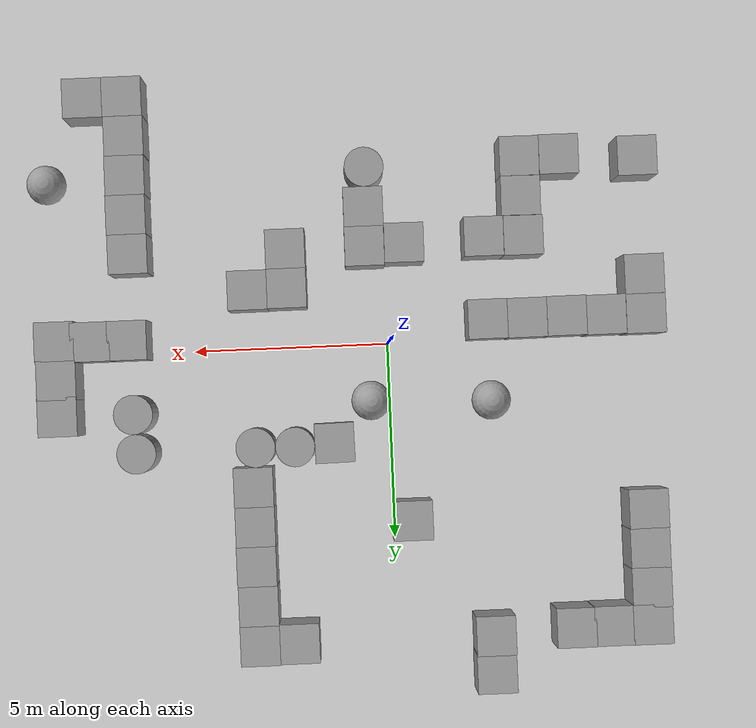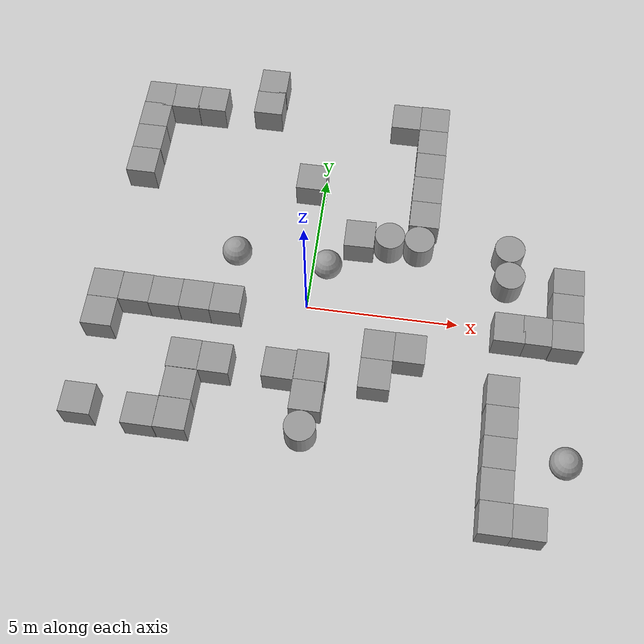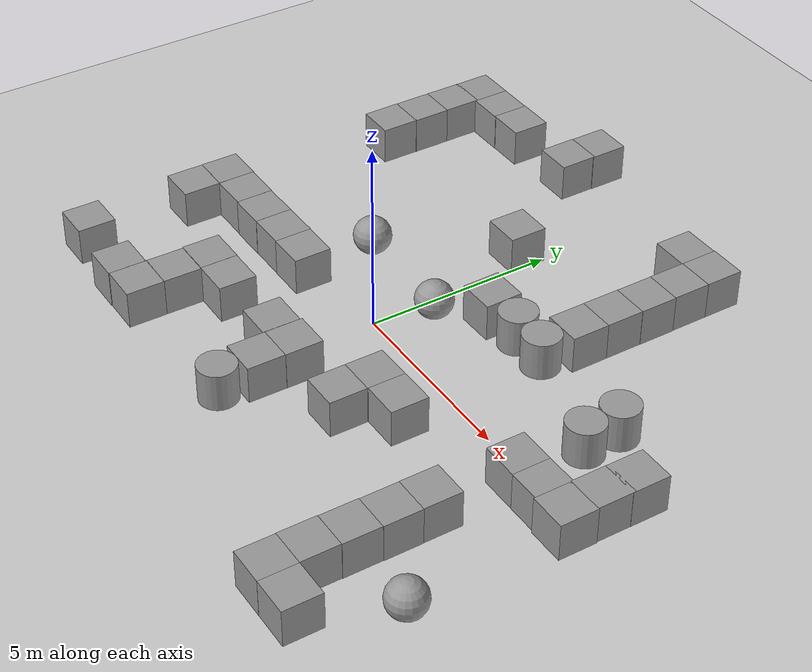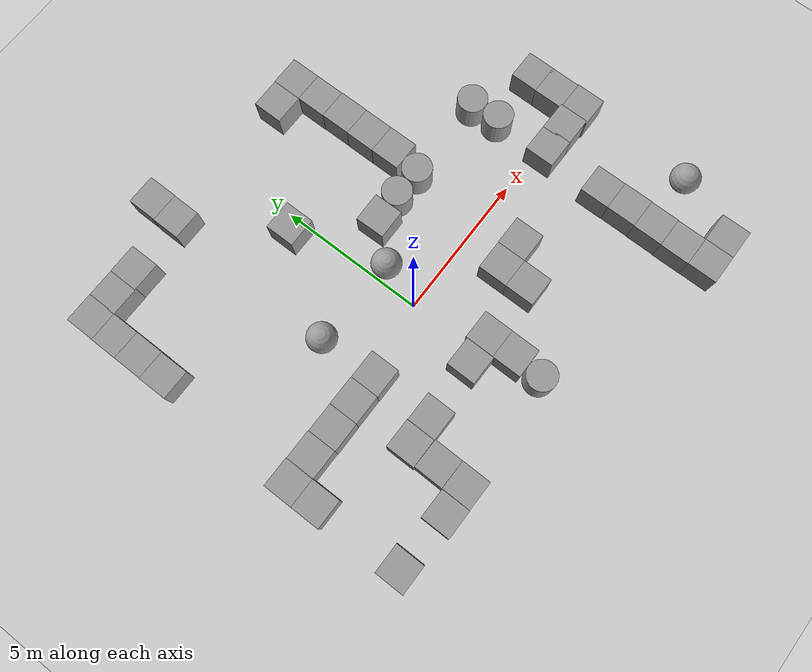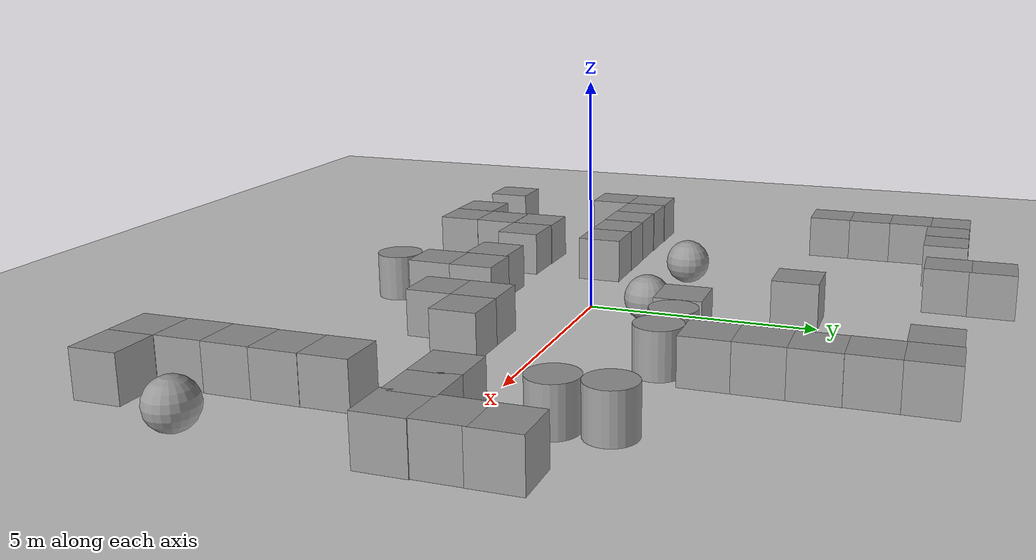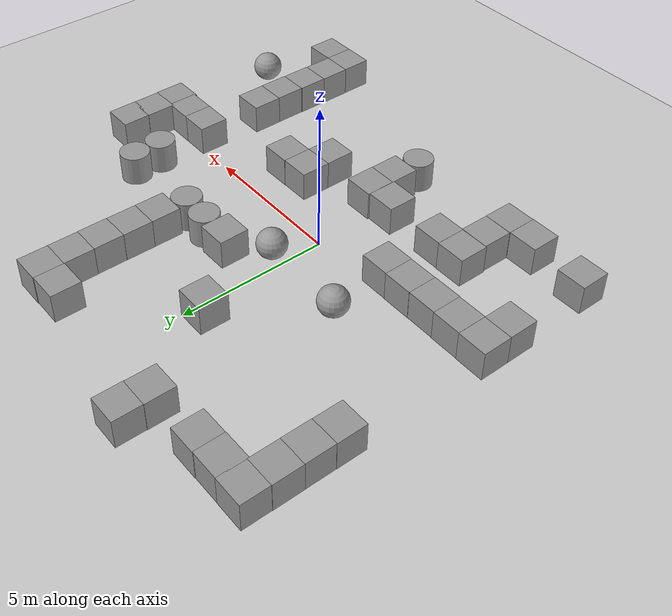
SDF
<sdf version="1.7">
 <world name="default">
  <light name="sun" type="directional">
   <pose>0 0 10 0 -0 0</pose>
   <diffuse>0.8 0.8 0.8 1</diffuse>
   <specular>0.2 0.2 0.2 1</specular>
   <attenuation>
    <range>1000</range>
    <constant>0.9</constant>
    <linear>0.01</linear>
    <quadratic>0.001</quadratic>
   </attenuation>
   <direction>-0.5 0.1 -0.9</direction>
   <spot><inner_angle>0</inner_angle><outer_angle>0</outer_angle><falloff>0</falloff></spot>
  </light>
  <model name="ground_plane">
   <static>1</static>
   <link name="link">
    <collision name="collision">
     <geometry><plane><normal>0 0 1</normal><size>100 100</size></plane></geometry>
     <surface><friction><ode><mu>100</mu><mu2>50</mu2></ode></friction></surface>
    </collision>
    <visual name="visual">
     <cast_shadows>0</cast_shadows>
     <geometry><plane><normal>0 0 1</normal><size>100 100</size></plane></geometry>
     <material>
      <script><uri>file://media/materials/scripts/gazebo.material</uri><name>Gazebo/Grey</name></script>
     </material>
    </visual>
   </link>
  </model>
  <gravity>0 0 -9.8</gravity>
  <magnetic_field>6e-06 2.3e-05 -4.2e-05</magnetic_field>
  <atmosphere type="adiabatic"/>
  <physics type="ode">
   <max_step_size>0.001</max_step_size>
   <real_time_factor>1</real_time_factor>
   <real_time_update_rate>1000</real_time_update_rate>
  </physics>
  <scene><ambient>0.4 0.4 0.4 1</ambient><background>0.7 0.7 0.7 1</background><shadows>1</shadows></scene>
  <audio><device>default</device></audio>
  <spherical_coordinates>
   <surface_model>EARTH_WGS84</surface_model>
   <latitude_deg>0</latitude_deg>
   <longitude_deg>0</longitude_deg>
   <elevation>0</elevation>
   <heading_deg>0</heading_deg>
  </spherical_coordinates>
  <model name="unit_box">
   <pose>-2.53778 -0.50539 0.499995 -1e-05 -0 0.002031</pose>
   <link name="link">
    <inertial>
     <mass>1</mass>
     <inertia>
      <ixx>0.166667</ixx>
      <ixy>0</ixy>
      <ixz>0</ixz>
      <iyy>0.166667</iyy>
      <iyz>0</iyz>
      <izz>0.166667</izz>
     </inertia>
    </inertial>
    <collision name="collision"><geometry><box><size>1 1 1</size></box></geometry></collision>
    <visual name="visual">
     <geometry><box><size>1 1 1</size></box></geometry>
     <material>
      <script><name>Gazebo/Grey</name><uri>file://media/materials/scripts/gazebo.material</uri></script>
     </material>
    </visual>
   </link>
  </model>
  <model name="unit_box_0">
   <pose>-0.447751 4.51274 0.499995 1e-05 -0 0</pose>
   <link name="link">
    <inertial>
     <mass>1</mass>
     <inertia>
      <ixx>0.166667</ixx>
      <ixy>0</ixy>
      <ixz>0</ixz>
      <iyy>0.166667</iyy>
      <iyz>0</iyz>
      <izz>0.166667</izz>
     </inertia>
    </inertial>
    <collision name="collision"><geometry><box><size>1 1 1</size></box></geometry></collision>
    <visual name="visual">
     <geometry><box><size>1 1 1</size></box></geometry>
     <material>
      <script><name>Gazebo/Grey</name><uri>file://media/materials/scripts/gazebo.material</uri></script>
     </material>
    </visual>
   </link>
  </model>
  <model name="unit_sphere">
   <pose>-2.59013 1.54719 0.5 0 -0 0</pose>
   <link name="link">
    <inertial>
     <mass>1</mass>
     <inertia><ixx>0.1</ixx><ixy>0</ixy><ixz>0</ixz><iyy>0.1</iyy><iyz>0</iyz><izz>0.1</izz></inertia>
    </inertial>
    <collision name="collision"><geometry><sphere><radius>0.5</radius></sphere></geometry></collision>
    <visual name="visual">
     <geometry><sphere><radius>0.5</radius></sphere></geometry>
     <material>
      <script><name>Gazebo/Grey</name><uri>file://media/materials/scripts/gazebo.material</uri></script>
     </material>
    </visual>
   </link>
  </model>
  <model name="unit_cylinder">
   <pose>2.45764 2.53387 0.499994 2e-06 -6e-06 -0.009375</pose>
   <link name="link">
    <inertial>
     <mass>1</mass>
     <inertia><ixx>0.145833</ixx><ixy>0</ixy><ixz>0</ixz><iyy>0.145833</iyy><iyz>0</iyz><izz>0.125</izz></inertia>
    </inertial>
    <collision name="collision">
     <geometry><cylinder><radius>0.5</radius><length>1</length></cylinder></geometry>
    </collision>
    <visual name="visual">
     <geometry><cylinder><radius>0.5</radius><length>1</length></cylinder></geometry>
     <material>
      <script><name>Gazebo/Grey</name><uri>file://media/materials/scripts/gazebo.material</uri></script>
     </material>
    </visual>
   </link>
  </model>
  <model name="unit_box_1">
   <pose>-3.53782 -0.499762 0.499995 0 1e-05 0.00204</pose>
   <link name="link">
    <inertial>
     <mass>1</mass>
     <inertia>
      <ixx>0.166667</ixx>
      <ixy>0</ixy>
      <ixz>0</ixz>
      <iyy>0.166667</iyy>
      <iyz>0</iyz>
      <izz>0.166667</izz>
     </inertia>
    </inertial>
    <collision name="collision"><geometry><box><size>1 1 1</size></box></geometry></collision>
    <visual name="visual">
     <geometry><box><size>1 1 1</size></box></geometry>
     <material>
      <script><name>Gazebo/Grey</name><uri>file://media/materials/scripts/gazebo.material</uri></script>
     </material>
    </visual>
   </link>
  </model>
  <model name="unit_cylinder_0">
   <pose>3.45746 2.51334 0.499995 -6e-06 1e-06 -0.000946</pose>
   <link name="link">
    <inertial>
     <mass>1</mass>
     <inertia><ixx>0.145833</ixx><ixy>0</ixy><ixz>0</ixz><iyy>0.145833</iyy><iyz>0</iyz><izz>0.125</izz></inertia>
    </inertial>
    <collision name="collision">
     <geometry><cylinder><radius>0.5</radius><length>1</length></cylinder></geometry>
    </collision>
    <visual name="visual">
     <geometry><cylinder><radius>0.5</radius><length>1</length></cylinder></geometry>
     <material>
      <script><name>Gazebo/Grey</name><uri>file://media/materials/scripts/gazebo.material</uri></script>
     </material>
    </visual>
   </link>
  </model>
  <model name="unit_cylinder_1">
   <pose>6.46575 2.55308 0.499994 -3e-06 -1e-06 0.002267</pose>
   <link name="link">
    <inertial>
     <mass>1</mass>
     <inertia><ixx>0.145833</ixx><ixy>0</ixy><ixz>0</ixz><iyy>0.145833</iyy><iyz>0</iyz><izz>0.125</izz></inertia>
    </inertial>
    <collision name="collision">
     <geometry><cylinder><radius>0.5</radius><length>1</length></cylinder></geometry>
    </collision>
    <visual name="visual">
     <geometry><cylinder><radius>0.5</radius><length>1</length></cylinder></geometry>
     <material>
      <script><name>Gazebo/Grey</name><uri>file://media/materials/scripts/gazebo.material</uri></script>
     </material>
    </visual>
   </link>
  </model>
  <model name="unit_box_2">
   <pose>-4.53817 -0.507899 0.499995 -1e-05 0 0.002766</pose>
   <link name="link">
    <inertial>
     <mass>1</mass>
     <inertia>
      <ixx>0.166667</ixx>
      <ixy>0</ixy>
      <ixz>0</ixz>
      <iyy>0.166667</iyy>
      <iyz>0</iyz>
      <izz>0.166667</izz>
     </inertia>
    </inertial>
    <collision name="collision"><geometry><box><size>1 1 1</size></box></geometry></collision>
    <visual name="visual">
     <geometry><box><size>1 1 1</size></box></geometry>
     <material>
      <script><name>Gazebo/Grey</name><uri>file://media/materials/scripts/gazebo.material</uri></script>
     </material>
    </visual>
   </link>
  </model>
  <model name="unit_box_3">
   <pose>-5.53828 -0.496096 0.499995 1e-05 -0 0.002902</pose>
   <link name="link">
    <inertial>
     <mass>1</mass>
     <inertia>
      <ixx>0.166667</ixx>
      <ixy>0</ixy>
      <ixz>0</ixz>
      <iyy>0.166667</iyy>
      <iyz>0</iyz>
      <izz>0.166667</izz>
     </inertia>
    </inertial>
    <collision name="collision"><geometry><box><size>1 1 1</size></box></geometry></collision>
    <visual name="visual">
     <geometry><box><size>1 1 1</size></box></geometry>
     <material>
      <script><name>Gazebo/Grey</name><uri>file://media/materials/scripts/gazebo.material</uri></script>
     </material>
    </visual>
   </link>
  </model>
  <model name="unit_box_4">
   <pose>-6.53595 -1.4848 0.499995 1e-05 -0 0.00194</pose>
   <link name="link">
    <inertial>
     <mass>1</mass>
     <inertia>
      <ixx>0.166667</ixx>
      <ixy>0</ixy>
      <ixz>0</ixz>
      <iyy>0.166667</iyy>
      <iyz>0</iyz>
      <izz>0.166667</izz>
     </inertia>
    </inertial>
    <collision name="collision"><geometry><box><size>1 1 1</size></box></geometry></collision>
    <visual name="visual">
     <geometry><box><size>1 1 1</size></box></geometry>
     <material>
      <script><name>Gazebo/Grey</name><uri>file://media/materials/scripts/gazebo.material</uri></script>
     </material>
    </visual>
   </link>
  </model>
  <model name="unit_box_5">
   <pose>-6.54033 -0.483931 0.499995 -0 -1e-05 0.000425</pose>
   <link name="link">
    <inertial>
     <mass>1</mass>
     <inertia>
      <ixx>0.166667</ixx>
      <ixy>0</ixy>
      <ixz>0</ixz>
      <iyy>0.166667</iyy>
      <iyz>0</iyz>
      <izz>0.166667</izz>
     </inertia>
    </inertial>
    <collision name="collision"><geometry><box><size>1 1 1</size></box></geometry></collision>
    <visual name="visual">
     <geometry><box><size>1 1 1</size></box></geometry>
     <material>
      <script><name>Gazebo/Grey</name><uri>file://media/materials/scripts/gazebo.material</uri></script>
     </material>
    </visual>
   </link>
  </model>
  <model name="unit_cylinder_2">
   <pose>6.5122 1.55393 0.499991 -1e-06 -1e-06 0.001186</pose>
   <link name="link">
    <inertial>
     <mass>1</mass>
     <inertia><ixx>0.145833</ixx><ixy>0</ixy><ixz>0</ixz><iyy>0.145833</iyy><iyz>0</iyz><izz>0.125</izz></inertia>
    </inertial>
    <collision name="collision">
     <geometry><cylinder><radius>0.5</radius><length>1</length></cylinder></geometry>
    </collision>
    <visual name="visual">
     <geometry><cylinder><radius>0.5</radius><length>1</length></cylinder></geometry>
     <material>
      <script><name>Gazebo/Grey</name><uri>file://media/materials/scripts/gazebo.material</uri></script>
     </material>
    </visual>
   </link>
  </model>
  <model name="unit_box_6">
   <pose>-3.52235 -2.58657 0.499995 0 -1e-05 -0.001505</pose>
   <link name="link">
    <inertial>
     <mass>1</mass>
     <inertia>
      <ixx>0.166667</ixx>
      <ixy>0</ixy>
      <ixz>0</ixz>
      <iyy>0.166667</iyy>
      <iyz>0</iyz>
      <izz>0.166667</izz>
     </inertia>
    </inertial>
    <collision name="collision"><geometry><box><size>1 1 1</size></box></geometry></collision>
    <visual name="visual">
     <geometry><box><size>1 1 1</size></box></geometry>
     <material>
      <script><name>Gazebo/Grey</name><uri>file://media/materials/scripts/gazebo.material</uri></script>
     </material>
    </visual>
   </link>
  </model>
  <model name="unit_box_7">
   <pose>-3.49268 -3.59352 0.499995 1e-05 -0 -0.011476</pose>
   <link name="link">
    <inertial>
     <mass>1</mass>
     <inertia>
      <ixx>0.166667</ixx>
      <ixy>0</ixy>
      <ixz>0</ixz>
      <iyy>0.166667</iyy>
      <iyz>0</iyz>
      <izz>0.166667</izz>
     </inertia>
    </inertial>
    <collision name="collision"><geometry><box><size>1 1 1</size></box></geometry></collision>
    <visual name="visual">
     <geometry><box><size>1 1 1</size></box></geometry>
     <material>
      <script><name>Gazebo/Grey</name><uri>file://media/materials/scripts/gazebo.material</uri></script>
     </material>
    </visual>
   </link>
  </model>
  <model name="unit_box_8">
   <pose>-3.49602 -4.59581 0.499995 0 -1e-05 -0.00697</pose>
   <link name="link">
    <inertial>
     <mass>1</mass>
     <inertia>
      <ixx>0.166667</ixx>
      <ixy>0</ixy>
      <ixz>0</ixz>
      <iyy>0.166667</iyy>
      <iyz>0</iyz>
      <izz>0.166667</izz>
     </inertia>
    </inertial>
    <collision name="collision"><geometry><box><size>1 1 1</size></box></geometry></collision>
    <visual name="visual">
     <geometry><box><size>1 1 1</size></box></geometry>
     <material>
      <script><name>Gazebo/Grey</name><uri>file://media/materials/scripts/gazebo.material</uri></script>
     </material>
    </visual>
   </link>
  </model>
  <model name="unit_box_9">
   <pose>-4.49777 -4.60397 0.499995 -0 1e-05 -0.003597</pose>
   <link name="link">
    <inertial>
     <mass>1</mass>
     <inertia>
      <ixx>0.166667</ixx>
      <ixy>0</ixy>
      <ixz>0</ixz>
      <iyy>0.166667</iyy>
      <iyz>0</iyz>
      <izz>0.166667</izz>
     </inertia>
    </inertial>
    <collision name="collision"><geometry><box><size>1 1 1</size></box></geometry></collision>
    <visual name="visual">
     <geometry><box><size>1 1 1</size></box></geometry>
     <material>
      <script><name>Gazebo/Grey</name><uri>file://media/materials/scripts/gazebo.material</uri></script>
     </material>
    </visual>
   </link>
  </model>
  <model name="unit_box_10">
   <pose>-6.48021 -4.48785 0.499995 0 1e-05 0</pose>
   <link name="link">
    <inertial>
     <mass>1</mass>
     <inertia>
      <ixx>0.166667</ixx>
      <ixy>0</ixy>
      <ixz>0</ixz>
      <iyy>0.166667</iyy>
      <iyz>0</iyz>
      <izz>0.166667</izz>
     </inertia>
    </inertial>
    <collision name="collision"><geometry><box><size>1 1 1</size></box></geometry></collision>
    <visual name="visual">
     <geometry><box><size>1 1 1</size></box></geometry>
     <material>
      <script><name>Gazebo/Grey</name><uri>file://media/materials/scripts/gazebo.material</uri></script>
     </material>
    </visual>
   </link>
  </model>
  <model name="unit_box_11">
   <pose>-2.52094 -2.60102 0.499995 0 1e-05 -0.004421</pose>
   <link name="link">
    <inertial>
     <mass>1</mass>
     <inertia>
      <ixx>0.166667</ixx>
      <ixy>0</ixy>
      <ixz>0</ixz>
      <iyy>0.166667</iyy>
      <iyz>0</iyz>
      <izz>0.166667</izz>
     </inertia>
    </inertial>
    <collision name="collision"><geometry><box><size>1 1 1</size></box></geometry></collision>
    <visual name="visual">
     <geometry><box><size>1 1 1</size></box></geometry>
     <material>
      <script><name>Gazebo/Grey</name><uri>file://media/materials/scripts/gazebo.material</uri></script>
     </material>
    </visual>
   </link>
  </model>
  <model name="unit_box_12">
   <pose>-0.496494 -2.52437 0.499995 -1e-05 -0 -0.007908</pose>
   <link name="link">
    <inertial>
     <mass>1</mass>
     <inertia>
      <ixx>0.166667</ixx>
      <ixy>0</ixy>
      <ixz>0</ixz>
      <iyy>0.166667</iyy>
      <iyz>0</iyz>
      <izz>0.166667</izz>
     </inertia>
    </inertial>
    <collision name="collision"><geometry><box><size>1 1 1</size></box></geometry></collision>
    <visual name="visual">
     <geometry><box><size>1 1 1</size></box></geometry>
     <material>
      <script><name>Gazebo/Grey</name><uri>file://media/materials/scripts/gazebo.material</uri></script>
     </material>
    </visual>
   </link>
  </model>
  <model name="unit_box_13">
   <pose>0.507306 -2.47689 0.499995 0 1e-05 -0.002796</pose>
   <link name="link">
    <inertial>
     <mass>1</mass>
     <inertia>
      <ixx>0.166667</ixx>
      <ixy>0</ixy>
      <ixz>0</ixz>
      <iyy>0.166667</iyy>
      <iyz>0</iyz>
      <izz>0.166667</izz>
     </inertia>
    </inertial>
    <collision name="collision"><geometry><box><size>1 1 1</size></box></geometry></collision>
    <visual name="visual">
     <geometry><box><size>1 1 1</size></box></geometry>
     <material>
      <script><name>Gazebo/Grey</name><uri>file://media/materials/scripts/gazebo.material</uri></script>
     </material>
    </visual>
   </link>
  </model>
  <model name="unit_box_14">
   <pose>0.499847 -3.47689 0.5 -0 -0 -0.002798</pose>
   <link name="link">
    <inertial>
     <mass>1</mass>
     <inertia>
      <ixx>0.166667</ixx>
      <ixy>0</ixy>
      <ixz>0</ixz>
      <iyy>0.166667</iyy>
      <iyz>0</iyz>
      <izz>0.166667</izz>
     </inertia>
    </inertial>
    <collision name="collision"><geometry><box><size>1 1 1</size></box></geometry></collision>
    <visual name="visual">
     <geometry><box><size>1 1 1</size></box></geometry>
     <material>
      <script><name>Gazebo/Grey</name><uri>file://media/materials/scripts/gazebo.material</uri></script>
     </material>
    </visual>
   </link>
  </model>
  <model name="unit_box_15">
   <pose>2.52033 -2.48798 0.499995 -1e-05 -0 -1.8e-05</pose>
   <link name="link">
    <inertial>
     <mass>1</mass>
     <inertia>
      <ixx>0.166667</ixx>
      <ixy>0</ixy>
      <ixz>0</ixz>
      <iyy>0.166667</iyy>
      <iyz>0</iyz>
      <izz>0.166667</izz>
     </inertia>
    </inertial>
    <collision name="collision"><geometry><box><size>1 1 1</size></box></geometry></collision>
    <visual name="visual">
     <geometry><box><size>1 1 1</size></box></geometry>
     <material>
      <script><name>Gazebo/Grey</name><uri>file://media/materials/scripts/gazebo.material</uri></script>
     </material>
    </visual>
   </link>
  </model>
  <model name="unit_box_16">
   <pose>2.51875 -1.48796 0.499995 -1e-05 -0 1.4e-05</pose>
   <link name="link">
    <inertial>
     <mass>1</mass>
     <inertia>
      <ixx>0.166667</ixx>
      <ixy>0</ixy>
      <ixz>0</ixz>
      <iyy>0.166667</iyy>
      <iyz>0</iyz>
      <izz>0.166667</izz>
     </inertia>
    </inertial>
    <collision name="collision"><geometry><box><size>1 1 1</size></box></geometry></collision>
    <visual name="visual">
     <geometry><box><size>1 1 1</size></box></geometry>
     <material>
      <script><name>Gazebo/Grey</name><uri>file://media/materials/scripts/gazebo.material</uri></script>
     </material>
    </visual>
   </link>
  </model>
  <model name="unit_box_17">
   <pose>3.51876 -1.47839 0.499995 -0 -1e-05 1.8e-05</pose>
   <link name="link">
    <inertial>
     <mass>1</mass>
     <inertia>
      <ixx>0.166667</ixx>
      <ixy>0</ixy>
      <ixz>0</ixz>
      <iyy>0.166667</iyy>
      <iyz>0</iyz>
      <izz>0.166667</izz>
     </inertia>
    </inertial>
    <collision name="collision"><geometry><box><size>1 1 1</size></box></geometry></collision>
    <visual name="visual">
     <geometry><box><size>1 1 1</size></box></geometry>
     <material>
      <script><name>Gazebo/Grey</name><uri>file://media/materials/scripts/gazebo.material</uri></script>
     </material>
    </visual>
   </link>
  </model>
  <model name="unit_box_18">
   <pose>1.45854 2.46929 0.499995 -1e-05 -0 0.015995</pose>
   <link name="link">
    <inertial>
     <mass>1</mass>
     <inertia>
      <ixx>0.166667</ixx>
      <ixy>0</ixy>
      <ixz>0</ixz>
      <iyy>0.166667</iyy>
      <iyz>0</iyz>
      <izz>0.166667</izz>
     </inertia>
    </inertial>
    <collision name="collision"><geometry><box><size>1 1 1</size></box></geometry></collision>
    <visual name="visual">
     <geometry><box><size>1 1 1</size></box></geometry>
     <material>
      <script><name>Gazebo/Grey</name><uri>file://media/materials/scripts/gazebo.material</uri></script>
     </material>
    </visual>
   </link>
  </model>
  <model name="unit_sphere_0">
   <pose>0.483842 1.43719 0.5 0 -0 0</pose>
   <link name="link">
    <inertial>
     <mass>1</mass>
     <inertia><ixx>0.1</ixx><ixy>0</ixy><ixz>0</ixz><iyy>0.1</iyy><iyz>0</iyz><izz>0.1</izz></inertia>
    </inertial>
    <collision name="collision"><geometry><sphere><radius>0.5</radius></sphere></geometry></collision>
    <visual name="visual">
     <geometry><sphere><radius>0.5</radius></sphere></geometry>
     <material>
      <script><name>Gazebo/Grey</name><uri>file://media/materials/scripts/gazebo.material</uri></script>
     </material>
    </visual>
   </link>
  </model>
  <model name="unit_box_19">
   <pose>3.54976 3.51353 0.499995 -1e-05 0 0.00185</pose>
   <link name="link">
    <inertial>
     <mass>1</mass>
     <inertia>
      <ixx>0.166667</ixx>
      <ixy>0</ixy>
      <ixz>0</ixz>
      <iyy>0.166667</iyy>
      <iyz>0</iyz>
      <izz>0.166667</izz>
     </inertia>
    </inertial>
    <collision name="collision"><geometry><box><size>1 1 1</size></box></geometry></collision>
    <visual name="visual">
     <geometry><box><size>1 1 1</size></box></geometry>
     <material>
      <script><name>Gazebo/Grey</name><uri>file://media/materials/scripts/gazebo.material</uri></script>
     </material>
    </visual>
   </link>
  </model>
  <model name="unit_cylinder_3">
   <pose>0.441408 -4.47674 0.5 0 -0 0.0012</pose>
   <link name="link">
    <inertial>
     <mass>1</mass>
     <inertia><ixx>0.145833</ixx><ixy>0</ixy><ixz>0</ixz><iyy>0.145833</iyy><iyz>0</iyz><izz>0.125</izz></inertia>
    </inertial>
    <collision name="collision">
     <geometry><cylinder><radius>0.5</radius><length>1</length></cylinder></geometry>
    </collision>
    <visual name="visual">
     <geometry><cylinder><radius>0.5</radius><length>1</length></cylinder></geometry>
     <material>
      <script><name>Gazebo/Grey</name><uri>file://media/materials/scripts/gazebo.material</uri></script>
     </material>
    </visual>
   </link>
  </model>
  <model name="unit_box_20">
   <pose>3.54614 4.51356 0.499995 0 -1e-05 0.001787</pose>
   <link name="link">
    <inertial>
     <mass>1</mass>
     <inertia>
      <ixx>0.166667</ixx>
      <ixy>0</ixy>
      <ixz>0</ixz>
      <iyy>0.166667</iyy>
      <iyz>0</iyz>
      <izz>0.166667</izz>
     </inertia>
    </inertial>
    <collision name="collision"><geometry><box><size>1 1 1</size></box></geometry></collision>
    <visual name="visual">
     <geometry><box><size>1 1 1</size></box></geometry>
     <material>
      <script><name>Gazebo/Grey</name><uri>file://media/materials/scripts/gazebo.material</uri></script>
     </material>
    </visual>
   </link>
  </model>
  <model name="unit_box_21">
   <pose>3.55025 5.51374 0.499995 0 -1e-05 0.001729</pose>
   <link name="link">
    <inertial>
     <mass>1</mass>
     <inertia>
      <ixx>0.166667</ixx>
      <ixy>0</ixy>
      <ixz>0</ixz>
      <iyy>0.166667</iyy>
      <iyz>0</iyz>
      <izz>0.166667</izz>
     </inertia>
    </inertial>
    <collision name="collision"><geometry><box><size>1 1 1</size></box></geometry></collision>
    <visual name="visual">
     <geometry><box><size>1 1 1</size></box></geometry>
     <material>
      <script><name>Gazebo/Grey</name><uri>file://media/materials/scripts/gazebo.material</uri></script>
     </material>
    </visual>
   </link>
  </model>
  <model name="unit_box_22">
   <pose>3.53859 6.51375 0.499995 1e-05 -0 0.001673</pose>
   <link name="link">
    <inertial>
     <mass>1</mass>
     <inertia>
      <ixx>0.166667</ixx>
      <ixy>0</ixy>
      <ixz>0</ixz>
      <iyy>0.166667</iyy>
      <iyz>0</iyz>
      <izz>0.166667</izz>
     </inertia>
    </inertial>
    <collision name="collision"><geometry><box><size>1 1 1</size></box></geometry></collision>
    <visual name="visual">
     <geometry><box><size>1 1 1</size></box></geometry>
     <material>
      <script><name>Gazebo/Grey</name><uri>file://media/materials/scripts/gazebo.material</uri></script>
     </material>
    </visual>
   </link>
  </model>
  <model name="unit_box_23">
   <pose>3.53675 7.51393 0.499995 1e-05 -0 0.002012</pose>
   <link name="link">
    <inertial>
     <mass>1</mass>
     <inertia>
      <ixx>0.166667</ixx>
      <ixy>0</ixy>
      <ixz>0</ixz>
      <iyy>0.166667</iyy>
      <iyz>0</iyz>
      <izz>0.166667</izz>
     </inertia>
    </inertial>
    <collision name="collision"><geometry><box><size>1 1 1</size></box></geometry></collision>
    <visual name="visual">
     <geometry><box><size>1 1 1</size></box></geometry>
     <material>
      <script><name>Gazebo/Grey</name><uri>file://media/materials/scripts/gazebo.material</uri></script>
     </material>
    </visual>
   </link>
  </model>
  <model name="unit_box_24">
   <pose>2.53677 7.49446 0.499995 1e-05 -0 0.002004</pose>
   <link name="link">
    <inertial>
     <mass>1</mass>
     <inertia>
      <ixx>0.166667</ixx>
      <ixy>0</ixy>
      <ixz>0</ixz>
      <iyy>0.166667</iyy>
      <iyz>0</iyz>
      <izz>0.166667</izz>
     </inertia>
    </inertial>
    <collision name="collision"><geometry><box><size>1 1 1</size></box></geometry></collision>
    <visual name="visual">
     <geometry><box><size>1 1 1</size></box></geometry>
     <material>
      <script><name>Gazebo/Grey</name><uri>file://media/materials/scripts/gazebo.material</uri></script>
     </material>
    </visual>
   </link>
  </model>
  <model name="unit_box_25">
   <pose>6.50381 -2.5128 0.5 0 -0 0.000794</pose>
   <link name="link">
    <inertial>
     <mass>1</mass>
     <inertia>
      <ixx>0.166667</ixx>
      <ixy>0</ixy>
      <ixz>0</ixz>
      <iyy>0.166667</iyy>
      <iyz>0</iyz>
      <izz>0.166667</izz>
     </inertia>
    </inertial>
    <collision name="collision"><geometry><box><size>1 1 1</size></box></geometry></collision>
    <visual name="visual">
     <geometry><box><size>1 1 1</size></box></geometry>
     <material>
      <script><name>Gazebo/Grey</name><uri>file://media/materials/scripts/gazebo.material</uri></script>
     </material>
    </visual>
   </link>
  </model>
  <model name="unit_box_26">
   <pose>6.51235 -3.51281 0.499995 -0 1e-05 0.000842</pose>
   <link name="link">
    <inertial>
     <mass>1</mass>
     <inertia>
      <ixx>0.166667</ixx>
      <ixy>0</ixy>
      <ixz>0</ixz>
      <iyy>0.166667</iyy>
      <iyz>0</iyz>
      <izz>0.166667</izz>
     </inertia>
    </inertial>
    <collision name="collision"><geometry><box><size>1 1 1</size></box></geometry></collision>
    <visual name="visual">
     <geometry><box><size>1 1 1</size></box></geometry>
     <material>
      <script><name>Gazebo/Grey</name><uri>file://media/materials/scripts/gazebo.material</uri></script>
     </material>
    </visual>
   </link>
  </model>
  <model name="unit_box_27">
   <pose>6.5016 -4.5129 0.499995 0 1e-05 0.000992</pose>
   <link name="link">
    <inertial>
     <mass>1</mass>
     <inertia>
      <ixx>0.166667</ixx>
      <ixy>0</ixy>
      <ixz>0</ixz>
      <iyy>0.166667</iyy>
      <iyz>0</iyz>
      <izz>0.166667</izz>
     </inertia>
    </inertial>
    <collision name="collision"><geometry><box><size>1 1 1</size></box></geometry></collision>
    <visual name="visual">
     <geometry><box><size>1 1 1</size></box></geometry>
     <material>
      <script><name>Gazebo/Grey</name><uri>file://media/materials/scripts/gazebo.material</uri></script>
     </material>
    </visual>
   </link>
  </model>
  <model name="unit_box_28">
   <pose>6.49083 -5.51319 0.499995 -0 -1e-05 0.001496</pose>
   <link name="link">
    <inertial>
     <mass>1</mass>
     <inertia>
      <ixx>0.166667</ixx>
      <ixy>0</ixy>
      <ixz>0</ixz>
      <iyy>0.166667</iyy>
      <iyz>0</iyz>
      <izz>0.166667</izz>
     </inertia>
    </inertial>
    <collision name="collision"><geometry><box><size>1 1 1</size></box></geometry></collision>
    <visual name="visual">
     <geometry><box><size>1 1 1</size></box></geometry>
     <material>
      <script><name>Gazebo/Grey</name><uri>file://media/materials/scripts/gazebo.material</uri></script>
     </material>
    </visual>
   </link>
  </model>
  <model name="unit_box_29">
   <pose>6.50076 -6.51361 0.499995 0 -9e-06 0.000703</pose>
   <link name="link">
    <inertial>
     <mass>1</mass>
     <inertia>
      <ixx>0.166667</ixx>
      <ixy>0</ixy>
      <ixz>0</ixz>
      <iyy>0.166667</iyy>
      <iyz>0</iyz>
      <izz>0.166667</izz>
     </inertia>
    </inertial>
    <collision name="collision"><geometry><box><size>1 1 1</size></box></geometry></collision>
    <visual name="visual">
     <geometry><box><size>1 1 1</size></box></geometry>
     <material>
      <script><name>Gazebo/Grey</name><uri>file://media/materials/scripts/gazebo.material</uri></script>
     </material>
    </visual>
   </link>
  </model>
  <model name="unit_box_30">
   <pose>7.50088 -6.51093 0.5 0 -0 0.000474</pose>
   <link name="link">
    <inertial>
     <mass>1</mass>
     <inertia>
      <ixx>0.166667</ixx>
      <ixy>0</ixy>
      <ixz>0</ixz>
      <iyy>0.166667</iyy>
      <iyz>0</iyz>
      <izz>0.166667</izz>
     </inertia>
    </inertial>
    <collision name="collision"><geometry><box><size>1 1 1</size></box></geometry></collision>
    <visual name="visual">
     <geometry><box><size>1 1 1</size></box></geometry>
     <material>
      <script><name>Gazebo/Grey</name><uri>file://media/materials/scripts/gazebo.material</uri></script>
     </material>
    </visual>
   </link>
  </model>
  <model name="unit_box_31">
   <pose>8.43126 1.53427 0.5 0 -0 0</pose>
   <link name="link">
    <inertial>
     <mass>1</mass>
     <inertia>
      <ixx>0.166667</ixx>
      <ixy>0</ixy>
      <ixz>0</ixz>
      <iyy>0.166667</iyy>
      <iyz>0</iyz>
      <izz>0.166667</izz>
     </inertia>
    </inertial>
    <collision name="collision"><geometry><box><size>1 1 1</size></box></geometry></collision>
    <visual name="visual">
     <geometry><box><size>1 1 1</size></box></geometry>
     <material>
      <script><name>Gazebo/Grey</name><uri>file://media/materials/scripts/gazebo.material</uri></script>
     </material>
    </visual>
   </link>
  </model>
  <model name="unit_box_32">
   <pose>8.42609 0.609969 0.5 0 -0 0</pose>
   <link name="link">
    <inertial>
     <mass>1</mass>
     <inertia>
      <ixx>0.166667</ixx>
      <ixy>0</ixy>
      <ixz>0</ixz>
      <iyy>0.166667</iyy>
      <iyz>0</iyz>
      <izz>0.166667</izz>
     </inertia>
    </inertial>
    <collision name="collision"><geometry><box><size>1 1 1</size></box></geometry></collision>
    <visual name="visual">
     <geometry><box><size>1 1 1</size></box></geometry>
     <material>
      <script><name>Gazebo/Grey</name><uri>file://media/materials/scripts/gazebo.material</uri></script>
     </material>
    </visual>
   </link>
  </model>
  <model name="unit_box_33">
   <pose>8.44781 -0.374136 0.5 0 -0 0</pose>
   <link name="link">
    <inertial>
     <mass>1</mass>
     <inertia>
      <ixx>0.166667</ixx>
      <ixy>0</ixy>
      <ixz>0</ixz>
      <iyy>0.166667</iyy>
      <iyz>0</iyz>
      <izz>0.166667</izz>
     </inertia>
    </inertial>
    <collision name="collision"><geometry><box><size>1 1 1</size></box></geometry></collision>
    <visual name="visual">
     <geometry><box><size>1 1 1</size></box></geometry>
     <material>
      <script><name>Gazebo/Grey</name><uri>file://media/materials/scripts/gazebo.material</uri></script>
     </material>
    </visual>
   </link>
  </model>
  <model name="unit_box_34">
   <pose>7.54 -0.332378 0.5 0 -0 0</pose>
   <link name="link">
    <inertial>
     <mass>1</mass>
     <inertia>
      <ixx>0.166667</ixx>
      <ixy>0</ixy>
      <ixz>0</ixz>
      <iyy>0.166667</iyy>
      <iyz>0</iyz>
      <izz>0.166667</izz>
     </inertia>
    </inertial>
    <collision name="collision"><geometry><box><size>1 1 1</size></box></geometry></collision>
    <visual name="visual">
     <geometry><box><size>1 1 1</size></box></geometry>
     <material>
      <script><name>Gazebo/Grey</name><uri>file://media/materials/scripts/gazebo.material</uri></script>
     </material>
    </visual>
   </link>
  </model>
  <model name="unit_box_35">
   <pose>6.60337 -0.332713 0.5 0 -0 0</pose>
   <link name="link">
    <inertial>
     <mass>1</mass>
     <inertia>
      <ixx>0.166667</ixx>
      <ixy>0</ixy>
      <ixz>0</ixz>
      <iyy>0.166667</iyy>
      <iyz>0</iyz>
      <izz>0.166667</izz>
     </inertia>
    </inertial>
    <collision name="collision"><geometry><box><size>1 1 1</size></box></geometry></collision>
    <visual name="visual">
     <geometry><box><size>1 1 1</size></box></geometry>
     <material>
      <script><name>Gazebo/Grey</name><uri>file://media/materials/scripts/gazebo.material</uri></script>
     </material>
    </visual>
   </link>
  </model>
  <model name="unit_sphere_1">
   <pose>8.57738 -4.41946 0.5 0 -0 0</pose>
   <link name="link">
    <inertial>
     <mass>1</mass>
     <inertia><ixx>0.1</ixx><ixy>0</ixy><ixz>0</ixz><iyy>0.1</iyy><iyz>0</iyz><izz>0.1</izz></inertia>
    </inertial>
    <collision name="collision"><geometry><sphere><radius>0.5</radius></sphere></geometry></collision>
    <visual name="visual">
     <geometry><sphere><radius>0.5</radius></sphere></geometry>
     <material>
      <script><name>Gazebo/Grey</name><uri>file://media/materials/scripts/gazebo.material</uri></script>
     </material>
    </visual>
   </link>
  </model>
  <model name="unit_box_36">
   <pose>-6.40173 4.45584 0.5 0 -0 0</pose>
   <link name="link">
    <inertial>
     <mass>1</mass>
     <inertia>
      <ixx>0.166667</ixx>
      <ixy>0</ixy>
      <ixz>0</ixz>
      <iyy>0.166667</iyy>
      <iyz>0</iyz>
      <izz>0.166667</izz>
     </inertia>
    </inertial>
    <collision name="collision"><geometry><box><size>1 1 1</size></box></geometry></collision>
    <visual name="visual">
     <geometry><box><size>1 1 1</size></box></geometry>
     <material>
      <script><name>Gazebo/Grey</name><uri>file://media/materials/scripts/gazebo.material</uri></script>
     </material>
    </visual>
   </link>
  </model>
  <model name="unit_box_37">
   <pose>-6.39418 5.44282 0.5 0 -0 0</pose>
   <link name="link">
    <inertial>
     <mass>1</mass>
     <inertia>
      <ixx>0.166667</ixx>
      <ixy>0</ixy>
      <ixz>0</ixz>
      <iyy>0.166667</iyy>
      <iyz>0</iyz>
      <izz>0.166667</izz>
     </inertia>
    </inertial>
    <collision name="collision"><geometry><box><size>1 1 1</size></box></geometry></collision>
    <visual name="visual">
     <geometry><box><size>1 1 1</size></box></geometry>
     <material>
      <script><name>Gazebo/Grey</name><uri>file://media/materials/scripts/gazebo.material</uri></script>
     </material>
    </visual>
   </link>
  </model>
  <model name="unit_box_38">
   <pose>-6.39612 6.43615 0.5 0 -0 0</pose>
   <link name="link">
    <inertial>
     <mass>1</mass>
     <inertia>
      <ixx>0.166667</ixx>
      <ixy>0</ixy>
      <ixz>0</ixz>
      <iyy>0.166667</iyy>
      <iyz>0</iyz>
      <izz>0.166667</izz>
     </inertia>
    </inertial>
    <collision name="collision"><geometry><box><size>1 1 1</size></box></geometry></collision>
    <visual name="visual">
     <geometry><box><size>1 1 1</size></box></geometry>
     <material>
      <script><name>Gazebo/Grey</name><uri>file://media/materials/scripts/gazebo.material</uri></script>
     </material>
    </visual>
   </link>
  </model>
  <model name="unit_box_39">
   <pose>-6.38614 7.36959 0.5 0 -0 0</pose>
   <link name="link">
    <inertial>
     <mass>1</mass>
     <inertia>
      <ixx>0.166667</ixx>
      <ixy>0</ixy>
      <ixz>0</ixz>
      <iyy>0.166667</iyy>
      <iyz>0</iyz>
      <izz>0.166667</izz>
     </inertia>
    </inertial>
    <collision name="collision"><geometry><box><size>1 1 1</size></box></geometry></collision>
    <visual name="visual">
     <geometry><box><size>1 1 1</size></box></geometry>
     <material>
      <script><name>Gazebo/Grey</name><uri>file://media/materials/scripts/gazebo.material</uri></script>
     </material>
    </visual>
   </link>
  </model>
  <model name="unit_box_40">
   <pose>-5.41002 7.36518 0.5 0 -0 0</pose>
   <link name="link">
    <inertial>
     <mass>1</mass>
     <inertia>
      <ixx>0.166667</ixx>
      <ixy>0</ixy>
      <ixz>0</ixz>
      <iyy>0.166667</iyy>
      <iyz>0</iyz>
      <izz>0.166667</izz>
     </inertia>
    </inertial>
    <collision name="collision"><geometry><box><size>1 1 1</size></box></geometry></collision>
    <visual name="visual">
     <geometry><box><size>1 1 1</size></box></geometry>
     <material>
      <script><name>Gazebo/Grey</name><uri>file://media/materials/scripts/gazebo.material</uri></script>
     </material>
    </visual>
   </link>
  </model>
  <model name="unit_box_41">
   <pose>-4.45543 7.37487 0.5 0 -0 0</pose>
   <link name="link">
    <inertial>
     <mass>1</mass>
     <inertia>
      <ixx>0.166667</ixx>
      <ixy>0</ixy>
      <ixz>0</ixz>
      <iyy>0.166667</iyy>
      <iyz>0</iyz>
      <izz>0.166667</izz>
     </inertia>
    </inertial>
    <collision name="collision"><geometry><box><size>1 1 1</size></box></geometry></collision>
    <visual name="visual">
     <geometry><box><size>1 1 1</size></box></geometry>
     <material>
      <script><name>Gazebo/Grey</name><uri>file://media/materials/scripts/gazebo.material</uri></script>
     </material>
    </visual>
   </link>
  </model>
  <model name="unit_box_42">
   <pose>-2.42166 7.49831 0.5 0 -0 0</pose>
   <link name="link">
    <inertial>
     <mass>1</mass>
     <inertia>
      <ixx>0.166667</ixx>
      <ixy>0</ixy>
      <ixz>0</ixz>
      <iyy>0.166667</iyy>
      <iyz>0</iyz>
      <izz>0.166667</izz>
     </inertia>
    </inertial>
    <collision name="collision"><geometry><box><size>1 1 1</size></box></geometry></collision>
    <visual name="visual">
     <geometry><box><size>1 1 1</size></box></geometry>
     <material>
      <script><name>Gazebo/Grey</name><uri>file://media/materials/scripts/gazebo.material</uri></script>
     </material>
    </visual>
   </link>
  </model>
  <model name="unit_box_43">
   <pose>-2.40768 8.44726 0.5 0 -0 0</pose>
   <link name="link">
    <inertial>
     <mass>1</mass>
     <inertia>
      <ixx>0.166667</ixx>
      <ixy>0</ixy>
      <ixz>0</ixz>
      <iyy>0.166667</iyy>
      <iyz>0</iyz>
      <izz>0.166667</izz>
     </inertia>
    </inertial>
    <collision name="collision"><geometry><box><size>1 1 1</size></box></geometry></collision>
    <visual name="visual">
     <geometry><box><size>1 1 1</size></box></geometry>
     <material>
      <script><name>Gazebo/Grey</name><uri>file://media/materials/scripts/gazebo.material</uri></script>
     </material>
    </visual>
   </link>
  </model>
 </world>
</sdf>
